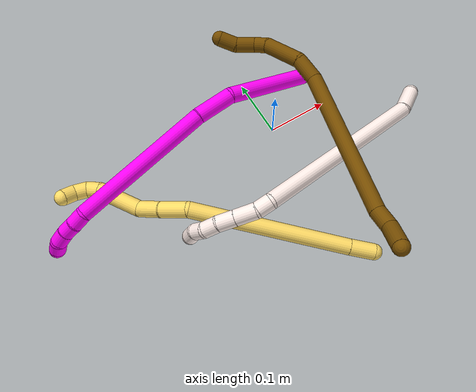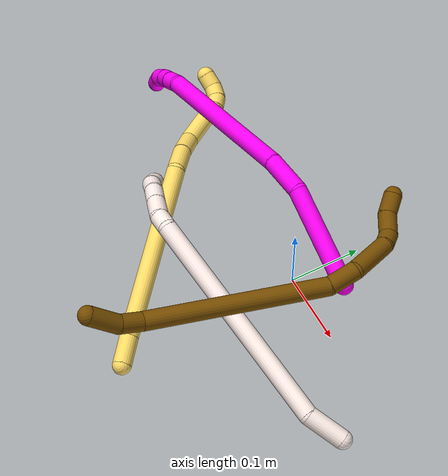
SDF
<sdf version="1.7">
 <world name="default">
  <model name="bin">
   <static>1</static>
   <link name="bottom">
    <collision name="collision-bottom">
     <pose>0 0 -0.01 0 -0 0</pose>
     <geometry><box><size>0.8 0.6 0.02</size></box></geometry>
     <surface>
      <friction><ode><mu>100</mu><mu2>100</mu2></ode></friction>
      <contact><collide_bitmask>65535</collide_bitmask></contact>
     </surface>
    </collision>
   </link>
   <link name="west_wall">
    <collision name="collision-west_wall">
     <pose>-0.41 0 0.1 0 -0 0</pose>
     <geometry><box><size>0.02 0.6 0.2</size></box></geometry>
     <surface>
      <friction><ode><mu>100</mu><mu2>100</mu2></ode></friction>
      <contact><collide_bitmask>65535</collide_bitmask></contact>
     </surface>
    </collision>
   </link>
   <link name="east_wall">
    <collision name="collision-east_wall">
     <pose>0.41 0 0.1 0 -0 0</pose>
     <geometry><box><size>0.02 0.6 0.2</size></box></geometry>
     <surface>
      <friction><ode><mu>100</mu><mu2>100</mu2></ode></friction>
      <contact><collide_bitmask>65535</collide_bitmask></contact>
     </surface>
    </collision>
   </link>
   <link name="south_wall">
    <collision name="collision-south_wall">
     <pose>0 -0.31 0.1 0 -0 0</pose>
     <geometry><box><size>0.8 0.02 0.2</size></box></geometry>
     <surface>
      <friction><ode><mu>100</mu><mu2>100</mu2></ode></friction>
      <contact><collide_bitmask>65535</collide_bitmask></contact>
     </surface>
    </collision>
   </link>
   <link name="north_wall">
    <collision name="collision-north_wall">
     <pose>0 0.31 0.1 0 -0 0</pose>
     <geometry><box><size>0.8 0.02 0.2</size></box></geometry>
     <surface>
      <friction><ode><mu>100</mu><mu2>100</mu2></ode></friction>
      <contact><collide_bitmask>65535</collide_bitmask></contact>
     </surface>
    </collision>
   </link>
  </model>
  <model name="5">
   <static>0</static>
   <link name="5">
    <collision name="collision-cylinder-e_1_1_4">
     <pose>-0.015449 0.008328 -0.008329 -2.35627 -0.919409 1.74831</pose>
     <geometry><cylinder><radius>0.0125</radius><length>0.038854</length></cylinder></geometry>
     <surface>
      <friction><ode><mu>1.16</mu><mu2>1.16</mu2><slip1>0</slip1><slip2>0</slip2></ode></friction>
      <contact><ode><kp>1e+06</kp><kd>1</kd><max_vel>0</max_vel><min_depth>0.001</min_depth></ode></contact>
     </surface>
    </collision>
    <visual name="visual-cylinder-e_1_1_4">
     <pose>-0.015449 0.008328 -0.008329 -2.35627 -0.919409 1.74831</pose>
     <geometry><cylinder><radius>0.0125</radius><length>0.038854</length></cylinder></geometry>
     <material><ambient>1 0.858824 0.4 1</ambient></material>
    </visual>
    <collision name="collision-cylinder-e_2_4_5">
     <pose>-0.126813 0.072639 -0.069764 -2.32982 -0.893313 1.67896</pose>
     <geometry><cylinder><radius>0.0125</radius><length>0.246203</length></cylinder></geometry>
     <surface>
      <friction><ode><mu>1.16</mu><mu2>1.16</mu2><slip1>0</slip1><slip2>0</slip2></ode></friction>
      <contact><ode><kp>1e+06</kp><kd>1</kd><max_vel>0</max_vel><min_depth>0.001</min_depth></ode></contact>
     </surface>
    </collision>
    <visual name="visual-cylinder-e_2_4_5">
     <pose>-0.126813 0.072639 -0.069764 -2.32982 -0.893313 1.67896</pose>
     <geometry><cylinder><radius>0.0125</radius><length>0.246203</length></cylinder></geometry>
     <material><ambient>1 0.858824 0.4 1</ambient></material>
    </visual>
    <collision name="collision-cylinder-e_3_5_6">
     <pose>-0.236336 0.132305 -0.139805 -2.92749 -0.665616 2.53877</pose>
     <geometry><cylinder><radius>0.0125</radius><length>0.04407</length></cylinder></geometry>
     <surface>
      <friction><ode><mu>1.16</mu><mu2>1.16</mu2><slip1>0</slip1><slip2>0</slip2></ode></friction>
      <contact><ode><kp>1e+06</kp><kd>1</kd><max_vel>0</max_vel><min_depth>0.001</min_depth></ode></contact>
     </surface>
    </collision>
    <visual name="visual-cylinder-e_3_5_6">
     <pose>-0.236336 0.132305 -0.139805 -2.92749 -0.665616 2.53877</pose>
     <geometry><cylinder><radius>0.0125</radius><length>0.04407</length></cylinder></geometry>
     <material><ambient>1 0.858824 0.4 1</ambient></material>
    </visual>
    <collision name="collision-cylinder-e_4_6_7">
     <pose>-0.259601 0.13898 -0.173304 -2.96284 -0.520945 2.49289</pose>
     <geometry><cylinder><radius>0.0125</radius><length>0.03881</length></cylinder></geometry>
     <surface>
      <friction><ode><mu>1.16</mu><mu2>1.16</mu2><slip1>0</slip1><slip2>0</slip2></ode></friction>
      <contact><ode><kp>1e+06</kp><kd>1</kd><max_vel>0</max_vel><min_depth>0.001</min_depth></ode></contact>
     </surface>
    </collision>
    <visual name="visual-cylinder-e_4_6_7">
     <pose>-0.259601 0.13898 -0.173304 -2.96284 -0.520945 2.49289</pose>
     <geometry><cylinder><radius>0.0125</radius><length>0.03881</length></cylinder></geometry>
     <material><ambient>1 0.858824 0.4 1</ambient></material>
    </visual>
    <collision name="collision-cylinder-e_5_7_8">
     <pose>-0.283188 0.156404 -0.205998 -2.41175 -0.571827 1.3117</pose>
     <geometry><cylinder><radius>0.0125</radius><length>0.051479</length></cylinder></geometry>
     <surface>
      <friction><ode><mu>1.16</mu><mu2>1.16</mu2><slip1>0</slip1><slip2>0</slip2></ode></friction>
      <contact><ode><kp>1e+06</kp><kd>1</kd><max_vel>0</max_vel><min_depth>0.001</min_depth></ode></contact>
     </surface>
    </collision>
    <visual name="visual-cylinder-e_5_7_8">
     <pose>-0.283188 0.156404 -0.205998 -2.41175 -0.571827 1.3117</pose>
     <geometry><cylinder><radius>0.0125</radius><length>0.051479</length></cylinder></geometry>
     <material><ambient>1 0.858824 0.4 1</ambient></material>
    </visual>
    <collision name="collision-cylinder-e_6_8_9">
     <pose>-0.301522 0.176212 -0.229549 -2.5145 -0.44802 1.22503</pose>
     <geometry><cylinder><radius>0.0125</radius><length>0.020333</length></cylinder></geometry>
     <surface>
      <friction><ode><mu>1.16</mu><mu2>1.16</mu2><slip1>0</slip1><slip2>0</slip2></ode></friction>
      <contact><ode><kp>1e+06</kp><kd>1</kd><max_vel>0</max_vel><min_depth>0.001</min_depth></ode></contact>
     </surface>
    </collision>
    <visual name="visual-cylinder-e_6_8_9">
     <pose>-0.301522 0.176212 -0.229549 -2.5145 -0.44802 1.22503</pose>
     <geometry><cylinder><radius>0.0125</radius><length>0.020333</length></cylinder></geometry>
     <material><ambient>1 0.858824 0.4 1</ambient></material>
    </visual>
    <collision name="collision-cylinder-e_7_9_10">
     <pose>-0.313307 0.184176 -0.243308 -2.75421 -0.822927 2.29671</pose>
     <geometry><cylinder><radius>0.0125</radius><length>0.020137</length></cylinder></geometry>
     <surface>
      <friction><ode><mu>1.16</mu><mu2>1.16</mu2><slip1>0</slip1><slip2>0</slip2></ode></friction>
      <contact><ode><kp>1e+06</kp><kd>1</kd><max_vel>0</max_vel><min_depth>0.001</min_depth></ode></contact>
     </surface>
    </collision>
    <visual name="visual-cylinder-e_7_9_10">
     <pose>-0.313307 0.184176 -0.243308 -2.75421 -0.822927 2.29671</pose>
     <geometry><cylinder><radius>0.0125</radius><length>0.020137</length></cylinder></geometry>
     <material><ambient>1 0.858824 0.4 1</ambient></material>
    </visual>
    <collision name="collision-cylinder-e_8_10_11">
     <pose>-0.330285 0.186787 -0.252641 -3.13349 -1.26851 3.13057</pose>
     <geometry><cylinder><radius>0.0125</radius><length>0.020104</length></cylinder></geometry>
     <surface>
      <friction><ode><mu>1.16</mu><mu2>1.16</mu2><slip1>0</slip1><slip2>0</slip2></ode></friction>
      <contact><ode><kp>1e+06</kp><kd>1</kd><max_vel>0</max_vel><min_depth>0.001</min_depth></ode></contact>
     </surface>
    </collision>
    <visual name="visual-cylinder-e_8_10_11">
     <pose>-0.330285 0.186787 -0.252641 -3.13349 -1.26851 3.13057</pose>
     <geometry><cylinder><radius>0.0125</radius><length>0.020104</length></cylinder></geometry>
     <material><ambient>1 0.858824 0.4 1</ambient></material>
    </visual>
    <collision name="collision-cylinder-e_9_11_2">
     <pose>-0.349749 0.185791 -0.254336 0.666273 -1.40511 -0.569996</pose>
     <geometry><cylinder><radius>0.0125</radius><length>0.02001</length></cylinder></geometry>
     <surface>
      <friction><ode><mu>1.16</mu><mu2>1.16</mu2><slip1>0</slip1><slip2>0</slip2></ode></friction>
      <contact><ode><kp>1e+06</kp><kd>1</kd><max_vel>0</max_vel><min_depth>0.001</min_depth></ode></contact>
     </surface>
    </collision>
    <visual name="visual-cylinder-e_9_11_2">
     <pose>-0.349749 0.185791 -0.254336 0.666273 -1.40511 -0.569996</pose>
     <geometry><cylinder><radius>0.0125</radius><length>0.02001</length></cylinder></geometry>
     <material><ambient>1 0.858824 0.4 1</ambient></material>
    </visual>
    <collision name="collision-sphere-2">
     <pose>-0.359617 0.184771 -0.253039 0 -0 0</pose>
     <geometry><sphere><radius>0.0125</radius></sphere></geometry>
     <surface>
      <friction><ode><mu>1.16</mu><mu2>1.16</mu2><slip1>0</slip1><slip2>0</slip2></ode></friction>
      <contact><ode><kp>1e+06</kp><kd>1</kd><max_vel>0</max_vel><min_depth>0.001</min_depth></ode></contact>
     </surface>
    </collision>
    <visual name="visual-sphere-2">
     <pose>-0.359617 0.184771 -0.253039 0 -0 0</pose>
     <geometry><sphere><radius>0.0125</radius></sphere></geometry>
     <material><ambient>1 0.858824 0.4 1</ambient></material>
    </visual>
    <collision name="collision-sphere-11">
     <pose>-0.339882 0.186811 -0.255633 0 -0 0</pose>
     <geometry><sphere><radius>0.0125</radius></sphere></geometry>
     <surface>
      <friction><ode><mu>1.16</mu><mu2>1.16</mu2><slip1>0</slip1><slip2>0</slip2></ode></friction>
      <contact><ode><kp>1e+06</kp><kd>1</kd><max_vel>0</max_vel><min_depth>0.001</min_depth></ode></contact>
     </surface>
    </collision>
    <visual name="visual-sphere-11">
     <pose>-0.339882 0.186811 -0.255633 0 -0 0</pose>
     <geometry><sphere><radius>0.0125</radius></sphere></geometry>
     <material><ambient>1 0.858824 0.4 1</ambient></material>
    </visual>
    <collision name="collision-sphere-10">
     <pose>-0.320689 0.186762 -0.249648 0 -0 0</pose>
     <geometry><sphere><radius>0.0125</radius></sphere></geometry>
     <surface>
      <friction><ode><mu>1.16</mu><mu2>1.16</mu2><slip1>0</slip1><slip2>0</slip2></ode></friction>
      <contact><ode><kp>1e+06</kp><kd>1</kd><max_vel>0</max_vel><min_depth>0.001</min_depth></ode></contact>
     </surface>
    </collision>
    <visual name="visual-sphere-10">
     <pose>-0.320689 0.186762 -0.249648 0 -0 0</pose>
     <geometry><sphere><radius>0.0125</radius></sphere></geometry>
     <material><ambient>1 0.858824 0.4 1</ambient></material>
    </visual>
    <collision name="collision-sphere-9">
     <pose>-0.305926 0.181589 -0.236968 0 -0 0</pose>
     <geometry><sphere><radius>0.0125</radius></sphere></geometry>
     <surface>
      <friction><ode><mu>1.16</mu><mu2>1.16</mu2><slip1>0</slip1><slip2>0</slip2></ode></friction>
      <contact><ode><kp>1e+06</kp><kd>1</kd><max_vel>0</max_vel><min_depth>0.001</min_depth></ode></contact>
     </surface>
    </collision>
    <visual name="visual-sphere-9">
     <pose>-0.305926 0.181589 -0.236968 0 -0 0</pose>
     <geometry><sphere><radius>0.0125</radius></sphere></geometry>
     <material><ambient>1 0.858824 0.4 1</ambient></material>
    </visual>
    <collision name="collision-sphere-4">
     <pose>-0.030899 0.016656 -0.016659 0 -0 0</pose>
     <geometry><sphere><radius>0.0125</radius></sphere></geometry>
     <surface>
      <friction><ode><mu>1.16</mu><mu2>1.16</mu2><slip1>0</slip1><slip2>0</slip2></ode></friction>
      <contact><ode><kp>1e+06</kp><kd>1</kd><max_vel>0</max_vel><min_depth>0.001</min_depth></ode></contact>
     </surface>
    </collision>
    <visual name="visual-sphere-4">
     <pose>-0.030899 0.016656 -0.016659 0 -0 0</pose>
     <geometry><sphere><radius>0.0125</radius></sphere></geometry>
     <material><ambient>1 0.858824 0.4 1</ambient></material>
    </visual>
    <collision name="collision-sphere-1">
     <geometry><sphere><radius>0.0125</radius></sphere></geometry>
     <surface>
      <friction><ode><mu>1.16</mu><mu2>1.16</mu2><slip1>0</slip1><slip2>0</slip2></ode></friction>
      <contact><ode><kp>1e+06</kp><kd>1</kd><max_vel>0</max_vel><min_depth>0.001</min_depth></ode></contact>
     </surface>
    </collision>
    <visual name="visual-sphere-1">
     <geometry><sphere><radius>0.0125</radius></sphere></geometry>
     <material><ambient>1 0.858824 0.4 1</ambient></material>
    </visual>
    <collision name="collision-sphere-8">
     <pose>-0.297118 0.170835 -0.222129 0 -0 0</pose>
     <geometry><sphere><radius>0.0125</radius></sphere></geometry>
     <surface>
      <friction><ode><mu>1.16</mu><mu2>1.16</mu2><slip1>0</slip1><slip2>0</slip2></ode></friction>
      <contact><ode><kp>1e+06</kp><kd>1</kd><max_vel>0</max_vel><min_depth>0.001</min_depth></ode></contact>
     </surface>
    </collision>
    <visual name="visual-sphere-8">
     <pose>-0.297118 0.170835 -0.222129 0 -0 0</pose>
     <geometry><sphere><radius>0.0125</radius></sphere></geometry>
     <material><ambient>1 0.858824 0.4 1</ambient></material>
    </visual>
    <collision name="collision-sphere-5">
     <pose>-0.222728 0.128622 -0.12287 0 -0 0</pose>
     <geometry><sphere><radius>0.0125</radius></sphere></geometry>
     <surface>
      <friction><ode><mu>1.16</mu><mu2>1.16</mu2><slip1>0</slip1><slip2>0</slip2></ode></friction>
      <contact><ode><kp>1e+06</kp><kd>1</kd><max_vel>0</max_vel><min_depth>0.001</min_depth></ode></contact>
     </surface>
    </collision>
    <visual name="visual-sphere-5">
     <pose>-0.222728 0.128622 -0.12287 0 -0 0</pose>
     <geometry><sphere><radius>0.0125</radius></sphere></geometry>
     <material><ambient>1 0.858824 0.4 1</ambient></material>
    </visual>
    <collision name="collision-sphere-6">
     <pose>-0.249943 0.135987 -0.156741 0 -0 0</pose>
     <geometry><sphere><radius>0.0125</radius></sphere></geometry>
     <surface>
      <friction><ode><mu>1.16</mu><mu2>1.16</mu2><slip1>0</slip1><slip2>0</slip2></ode></friction>
      <contact><ode><kp>1e+06</kp><kd>1</kd><max_vel>0</max_vel><min_depth>0.001</min_depth></ode></contact>
     </surface>
    </collision>
    <visual name="visual-sphere-6">
     <pose>-0.249943 0.135987 -0.156741 0 -0 0</pose>
     <geometry><sphere><radius>0.0125</radius></sphere></geometry>
     <material><ambient>1 0.858824 0.4 1</ambient></material>
    </visual>
    <collision name="collision-sphere-7">
     <pose>-0.269259 0.141972 -0.189866 0 -0 0</pose>
     <geometry><sphere><radius>0.0125</radius></sphere></geometry>
     <surface>
      <friction><ode><mu>1.16</mu><mu2>1.16</mu2><slip1>0</slip1><slip2>0</slip2></ode></friction>
      <contact><ode><kp>1e+06</kp><kd>1</kd><max_vel>0</max_vel><min_depth>0.001</min_depth></ode></contact>
     </surface>
    </collision>
    <visual name="visual-sphere-7">
     <pose>-0.269259 0.141972 -0.189866 0 -0 0</pose>
     <geometry><sphere><radius>0.0125</radius></sphere></geometry>
     <material><ambient>1 0.858824 0.4 1</ambient></material>
    </visual>
    <inertial>
     <pose>-0.185938 0.104496 -0.121453 0 -0 0</pose>
     <mass>0.5</mass>
     <inertia>
      <ixx>0.000684</ixx>
      <ixy>0</ixy>
      <ixz>0</ixz>
      <iyy>0.00164</iyy>
      <iyz>0</iyz>
      <izz>0.000399</izz>
     </inertia>
    </inertial>
   </link>
   <pose>0.015913 -0.258635 0.012274 0.557776 0.387153 -0.050406</pose>
  </model>
  <model name="10">
   <static>0</static>
   <link name="10">
    <collision name="collision-cylinder-e_1_1_4">
     <pose>-0.055926 0.009458 0.039847 -0.233056 -0.93872 0.118596</pose>
     <geometry><cylinder><radius>0.0125</radius><length>0.138635</length></cylinder></geometry>
     <surface>
      <friction><ode><mu>1.16</mu><mu2>1.16</mu2><slip1>0</slip1><slip2>0</slip2></ode></friction>
      <contact><ode><kp>1e+06</kp><kd>1</kd><max_vel>0</max_vel><min_depth>0.001</min_depth></ode></contact>
     </surface>
    </collision>
    <visual name="visual-cylinder-e_1_1_4">
     <pose>-0.055926 0.009458 0.039847 -0.233056 -0.93872 0.118596</pose>
     <geometry><cylinder><radius>0.0125</radius><length>0.138635</length></cylinder></geometry>
     <material><ambient>1 0 0.964706 1</ambient></material>
    </visual>
    <collision name="collision-cylinder-e_2_4_5">
     <pose>-0.136687 0.012543 0.09274 0.454475 -1.04175 -0.263785</pose>
     <geometry><cylinder><radius>0.0125</radius><length>0.057538</length></cylinder></geometry>
     <surface>
      <friction><ode><mu>1.16</mu><mu2>1.16</mu2><slip1>0</slip1><slip2>0</slip2></ode></friction>
      <contact><ode><kp>1e+06</kp><kd>1</kd><max_vel>0</max_vel><min_depth>0.001</min_depth></ode></contact>
     </surface>
    </collision>
    <visual name="visual-cylinder-e_2_4_5">
     <pose>-0.136687 0.012543 0.09274 0.454475 -1.04175 -0.263785</pose>
     <geometry><cylinder><radius>0.0125</radius><length>0.057538</length></cylinder></geometry>
     <material><ambient>1 0 0.964706 1</ambient></material>
    </visual>
    <collision name="collision-cylinder-e_3_5_6">
     <pose>-0.252588 -0.034196 0.150524 0.734057 -0.986256 -0.407482</pose>
     <geometry><cylinder><radius>0.0125</radius><length>0.21839</length></cylinder></geometry>
     <surface>
      <friction><ode><mu>1.16</mu><mu2>1.16</mu2><slip1>0</slip1><slip2>0</slip2></ode></friction>
      <contact><ode><kp>1e+06</kp><kd>1</kd><max_vel>0</max_vel><min_depth>0.001</min_depth></ode></contact>
     </surface>
    </collision>
    <visual name="visual-cylinder-e_3_5_6">
     <pose>-0.252588 -0.034196 0.150524 0.734057 -0.986256 -0.407482</pose>
     <geometry><cylinder><radius>0.0125</radius><length>0.21839</length></cylinder></geometry>
     <material><ambient>1 0 0.964706 1</ambient></material>
    </visual>
    <collision name="collision-cylinder-e_4_6_7">
     <pose>-0.352966 -0.08102 0.196846 1.33035 -0.950595 -0.767392</pose>
     <geometry><cylinder><radius>0.0125</radius><length>0.022888</length></cylinder></geometry>
     <surface>
      <friction><ode><mu>1.16</mu><mu2>1.16</mu2><slip1>0</slip1><slip2>0</slip2></ode></friction>
      <contact><ode><kp>1e+06</kp><kd>1</kd><max_vel>0</max_vel><min_depth>0.001</min_depth></ode></contact>
     </surface>
    </collision>
    <visual name="visual-cylinder-e_4_6_7">
     <pose>-0.352966 -0.08102 0.196846 1.33035 -0.950595 -0.767392</pose>
     <geometry><cylinder><radius>0.0125</radius><length>0.022888</length></cylinder></geometry>
     <material><ambient>1 0 0.964706 1</ambient></material>
    </visual>
    <collision name="collision-cylinder-e_5_7_8">
     <pose>-0.370691 -0.093011 0.198457 1.56581 -0.989168 -0.985008</pose>
     <geometry><cylinder><radius>0.0125</radius><length>0.020135</length></cylinder></geometry>
     <surface>
      <friction><ode><mu>1.16</mu><mu2>1.16</mu2><slip1>0</slip1><slip2>0</slip2></ode></friction>
      <contact><ode><kp>1e+06</kp><kd>1</kd><max_vel>0</max_vel><min_depth>0.001</min_depth></ode></contact>
     </surface>
    </collision>
    <visual name="visual-cylinder-e_5_7_8">
     <pose>-0.370691 -0.093011 0.198457 1.56581 -0.989168 -0.985008</pose>
     <geometry><cylinder><radius>0.0125</radius><length>0.020135</length></cylinder></geometry>
     <material><ambient>1 0 0.964706 1</ambient></material>
    </visual>
    <collision name="collision-cylinder-e_6_8_9">
     <pose>-0.387109 -0.105624 0.198211 1.6095 -0.846239 -0.875603</pose>
     <geometry><cylinder><radius>0.0125</radius><length>0.021384</length></cylinder></geometry>
     <surface>
      <friction><ode><mu>1.16</mu><mu2>1.16</mu2><slip1>0</slip1><slip2>0</slip2></ode></friction>
      <contact><ode><kp>1e+06</kp><kd>1</kd><max_vel>0</max_vel><min_depth>0.001</min_depth></ode></contact>
     </surface>
    </collision>
    <visual name="visual-cylinder-e_6_8_9">
     <pose>-0.387109 -0.105624 0.198211 1.6095 -0.846239 -0.875603</pose>
     <geometry><cylinder><radius>0.0125</radius><length>0.021384</length></cylinder></geometry>
     <material><ambient>1 0 0.964706 1</ambient></material>
    </visual>
    <collision name="collision-cylinder-e_7_9_2">
     <pose>-0.400348 -0.121069 0.1943 1.98088 -0.520887 -0.7721</pose>
     <geometry><cylinder><radius>0.0125</radius><length>0.021029</length></cylinder></geometry>
     <surface>
      <friction><ode><mu>1.16</mu><mu2>1.16</mu2><slip1>0</slip1><slip2>0</slip2></ode></friction>
      <contact><ode><kp>1e+06</kp><kd>1</kd><max_vel>0</max_vel><min_depth>0.001</min_depth></ode></contact>
     </surface>
    </collision>
    <visual name="visual-cylinder-e_7_9_2">
     <pose>-0.400348 -0.121069 0.1943 1.98088 -0.520887 -0.7721</pose>
     <geometry><cylinder><radius>0.0125</radius><length>0.021029</length></cylinder></geometry>
     <material><ambient>1 0 0.964706 1</ambient></material>
    </visual>
    <collision name="collision-sphere-2">
     <pose>-0.40558 -0.129433 0.190664 0 -0 0</pose>
     <geometry><sphere><radius>0.0125</radius></sphere></geometry>
     <surface>
      <friction><ode><mu>1.16</mu><mu2>1.16</mu2><slip1>0</slip1><slip2>0</slip2></ode></friction>
      <contact><ode><kp>1e+06</kp><kd>1</kd><max_vel>0</max_vel><min_depth>0.001</min_depth></ode></contact>
     </surface>
    </collision>
    <visual name="visual-sphere-2">
     <pose>-0.40558 -0.129433 0.190664 0 -0 0</pose>
     <geometry><sphere><radius>0.0125</radius></sphere></geometry>
     <material><ambient>1 0 0.964706 1</ambient></material>
    </visual>
    <collision name="collision-sphere-9">
     <pose>-0.395115 -0.112705 0.197936 0 -0 0</pose>
     <geometry><sphere><radius>0.0125</radius></sphere></geometry>
     <surface>
      <friction><ode><mu>1.16</mu><mu2>1.16</mu2><slip1>0</slip1><slip2>0</slip2></ode></friction>
      <contact><ode><kp>1e+06</kp><kd>1</kd><max_vel>0</max_vel><min_depth>0.001</min_depth></ode></contact>
     </surface>
    </collision>
    <visual name="visual-sphere-9">
     <pose>-0.395115 -0.112705 0.197936 0 -0 0</pose>
     <geometry><sphere><radius>0.0125</radius></sphere></geometry>
     <material><ambient>1 0 0.964706 1</ambient></material>
    </visual>
    <collision name="collision-sphere-4">
     <pose>-0.111851 0.018917 0.079694 0 -0 0</pose>
     <geometry><sphere><radius>0.0125</radius></sphere></geometry>
     <surface>
      <friction><ode><mu>1.16</mu><mu2>1.16</mu2><slip1>0</slip1><slip2>0</slip2></ode></friction>
      <contact><ode><kp>1e+06</kp><kd>1</kd><max_vel>0</max_vel><min_depth>0.001</min_depth></ode></contact>
     </surface>
    </collision>
    <visual name="visual-sphere-4">
     <pose>-0.111851 0.018917 0.079694 0 -0 0</pose>
     <geometry><sphere><radius>0.0125</radius></sphere></geometry>
     <material><ambient>1 0 0.964706 1</ambient></material>
    </visual>
    <collision name="collision-sphere-1">
     <geometry><sphere><radius>0.0125</radius></sphere></geometry>
     <surface>
      <friction><ode><mu>1.16</mu><mu2>1.16</mu2><slip1>0</slip1><slip2>0</slip2></ode></friction>
      <contact><ode><kp>1e+06</kp><kd>1</kd><max_vel>0</max_vel><min_depth>0.001</min_depth></ode></contact>
     </surface>
    </collision>
    <visual name="visual-sphere-1">
     <geometry><sphere><radius>0.0125</radius></sphere></geometry>
     <material><ambient>1 0 0.964706 1</ambient></material>
    </visual>
    <collision name="collision-sphere-8">
     <pose>-0.379103 -0.098542 0.198485 0 -0 0</pose>
     <geometry><sphere><radius>0.0125</radius></sphere></geometry>
     <surface>
      <friction><ode><mu>1.16</mu><mu2>1.16</mu2><slip1>0</slip1><slip2>0</slip2></ode></friction>
      <contact><ode><kp>1e+06</kp><kd>1</kd><max_vel>0</max_vel><min_depth>0.001</min_depth></ode></contact>
     </surface>
    </collision>
    <visual name="visual-sphere-8">
     <pose>-0.379103 -0.098542 0.198485 0 -0 0</pose>
     <geometry><sphere><radius>0.0125</radius></sphere></geometry>
     <material><ambient>1 0 0.964706 1</ambient></material>
    </visual>
    <collision name="collision-sphere-5">
     <pose>-0.161523 0.006168 0.105787 0 -0 0</pose>
     <geometry><sphere><radius>0.0125</radius></sphere></geometry>
     <surface>
      <friction><ode><mu>1.16</mu><mu2>1.16</mu2><slip1>0</slip1><slip2>0</slip2></ode></friction>
      <contact><ode><kp>1e+06</kp><kd>1</kd><max_vel>0</max_vel><min_depth>0.001</min_depth></ode></contact>
     </surface>
    </collision>
    <visual name="visual-sphere-5">
     <pose>-0.161523 0.006168 0.105787 0 -0 0</pose>
     <geometry><sphere><radius>0.0125</radius></sphere></geometry>
     <material><ambient>1 0 0.964706 1</ambient></material>
    </visual>
    <collision name="collision-sphere-6">
     <pose>-0.343653 -0.074561 0.195262 0 -0 0</pose>
     <geometry><sphere><radius>0.0125</radius></sphere></geometry>
     <surface>
      <friction><ode><mu>1.16</mu><mu2>1.16</mu2><slip1>0</slip1><slip2>0</slip2></ode></friction>
      <contact><ode><kp>1e+06</kp><kd>1</kd><max_vel>0</max_vel><min_depth>0.001</min_depth></ode></contact>
     </surface>
    </collision>
    <visual name="visual-sphere-6">
     <pose>-0.343653 -0.074561 0.195262 0 -0 0</pose>
     <geometry><sphere><radius>0.0125</radius></sphere></geometry>
     <material><ambient>1 0 0.964706 1</ambient></material>
    </visual>
    <collision name="collision-sphere-7">
     <pose>-0.362279 -0.08748 0.19843 0 -0 0</pose>
     <geometry><sphere><radius>0.0125</radius></sphere></geometry>
     <surface>
      <friction><ode><mu>1.16</mu><mu2>1.16</mu2><slip1>0</slip1><slip2>0</slip2></ode></friction>
      <contact><ode><kp>1e+06</kp><kd>1</kd><max_vel>0</max_vel><min_depth>0.001</min_depth></ode></contact>
     </surface>
    </collision>
    <visual name="visual-sphere-7">
     <pose>-0.362279 -0.08748 0.19843 0 -0 0</pose>
     <geometry><sphere><radius>0.0125</radius></sphere></geometry>
     <material><ambient>1 0 0.964706 1</ambient></material>
    </visual>
    <inertial>
     <pose>-0.206041 -0.027934 0.121118 0 -0 0</pose>
     <mass>0.5</mass>
     <inertia>
      <ixx>0.000376</ixx>
      <ixy>0</ixy>
      <ixz>0</ixz>
      <iyy>0.000846</iyy>
      <iyz>0</iyz>
      <izz>0.001251</izz>
     </inertia>
    </inertial>
   </link>
   <pose>0.073372 0.030893 0.065431 0.888933 -0.175216 -0.430684</pose>
  </model>
  <model name="11">
   <static>0</static>
   <link name="11">
    <collision name="collision-cylinder-e_1_1_4">
     <pose>-0.01992 0.01618 -0.002823 -1.74351 -0.881285 1.02243</pose>
     <geometry><cylinder><radius>0.0125</radius><length>0.051635</length></cylinder></geometry>
     <surface>
      <friction><ode><mu>1.16</mu><mu2>1.16</mu2><slip1>0</slip1><slip2>0</slip2></ode></friction>
      <contact><ode><kp>1e+06</kp><kd>1</kd><max_vel>0</max_vel><min_depth>0.001</min_depth></ode></contact>
     </surface>
    </collision>
    <visual name="visual-cylinder-e_1_1_4">
     <pose>-0.01992 0.01618 -0.002823 -1.74351 -0.881285 1.02243</pose>
     <geometry><cylinder><radius>0.0125</radius><length>0.051635</length></cylinder></geometry>
     <material><ambient>1 0.933333 0.909804 1</ambient></material>
    </visual>
    <collision name="collision-cylinder-e_2_4_5">
     <pose>-0.18126 0.074183 -0.034433 -2.17362 -1.2261 1.85808</pose>
     <geometry><cylinder><radius>0.0125</radius><length>0.300517</length></cylinder></geometry>
     <surface>
      <friction><ode><mu>1.16</mu><mu2>1.16</mu2><slip1>0</slip1><slip2>0</slip2></ode></friction>
      <contact><ode><kp>1e+06</kp><kd>1</kd><max_vel>0</max_vel><min_depth>0.001</min_depth></ode></contact>
     </surface>
    </collision>
    <visual name="visual-cylinder-e_2_4_5">
     <pose>-0.18126 0.074183 -0.034433 -2.17362 -1.2261 1.85808</pose>
     <geometry><cylinder><radius>0.0125</radius><length>0.300517</length></cylinder></geometry>
     <material><ambient>1 0.933333 0.909804 1</ambient></material>
    </visual>
    <collision name="collision-cylinder-e_3_5_6">
     <pose>-0.334116 0.115448 -0.062097 0.461949 -1.46153 -0.415483</pose>
     <geometry><cylinder><radius>0.0125</radius><length>0.023009</length></cylinder></geometry>
     <surface>
      <friction><ode><mu>1.16</mu><mu2>1.16</mu2><slip1>0</slip1><slip2>0</slip2></ode></friction>
      <contact><ode><kp>1e+06</kp><kd>1</kd><max_vel>0</max_vel><min_depth>0.001</min_depth></ode></contact>
     </surface>
    </collision>
    <visual name="visual-cylinder-e_3_5_6">
     <pose>-0.334116 0.115448 -0.062097 0.461949 -1.46153 -0.415483</pose>
     <geometry><cylinder><radius>0.0125</radius><length>0.023009</length></cylinder></geometry>
     <material><ambient>1 0.933333 0.909804 1</ambient></material>
    </visual>
    <collision name="collision-cylinder-e_4_6_7">
     <pose>-0.360781 0.10884 -0.059708 1.36458 -1.18531 -1.00124</pose>
     <geometry><cylinder><radius>0.0125</radius><length>0.03287</length></cylinder></geometry>
     <surface>
      <friction><ode><mu>1.16</mu><mu2>1.16</mu2><slip1>0</slip1><slip2>0</slip2></ode></friction>
      <contact><ode><kp>1e+06</kp><kd>1</kd><max_vel>0</max_vel><min_depth>0.001</min_depth></ode></contact>
     </surface>
    </collision>
    <visual name="visual-cylinder-e_4_6_7">
     <pose>-0.360781 0.10884 -0.059708 1.36458 -1.18531 -1.00124</pose>
     <geometry><cylinder><radius>0.0125</radius><length>0.03287</length></cylinder></geometry>
     <material><ambient>1 0.933333 0.909804 1</ambient></material>
    </visual>
    <collision name="collision-cylinder-e_5_7_8">
     <pose>-0.388659 0.097525 -0.057438 1.38229 -1.16988 -1.00239</pose>
     <geometry><cylinder><radius>0.0125</radius><length>0.027476</length></cylinder></geometry>
     <surface>
      <friction><ode><mu>1.16</mu><mu2>1.16</mu2><slip1>0</slip1><slip2>0</slip2></ode></friction>
      <contact><ode><kp>1e+06</kp><kd>1</kd><max_vel>0</max_vel><min_depth>0.001</min_depth></ode></contact>
     </surface>
    </collision>
    <visual name="visual-cylinder-e_5_7_8">
     <pose>-0.388659 0.097525 -0.057438 1.38229 -1.16988 -1.00239</pose>
     <geometry><cylinder><radius>0.0125</radius><length>0.027476</length></cylinder></geometry>
     <material><ambient>1 0.933333 0.909804 1</ambient></material>
    </visual>
    <collision name="collision-cylinder-e_6_8_9">
     <pose>-0.411611 0.0872 -0.053366 1.02571 -1.04962 -0.63031</pose>
     <geometry><cylinder><radius>0.0125</radius><length>0.023764</length></cylinder></geometry>
     <surface>
      <friction><ode><mu>1.16</mu><mu2>1.16</mu2><slip1>0</slip1><slip2>0</slip2></ode></friction>
      <contact><ode><kp>1e+06</kp><kd>1</kd><max_vel>0</max_vel><min_depth>0.001</min_depth></ode></contact>
     </surface>
    </collision>
    <visual name="visual-cylinder-e_6_8_9">
     <pose>-0.411611 0.0872 -0.053366 1.02571 -1.04962 -0.63031</pose>
     <geometry><cylinder><radius>0.0125</radius><length>0.023764</length></cylinder></geometry>
     <material><ambient>1 0.933333 0.909804 1</ambient></material>
    </visual>
    <collision name="collision-cylinder-e_7_9_10">
     <pose>-0.428088 0.075005 -0.046853 1.12096 -0.661732 -0.424667</pose>
     <geometry><cylinder><radius>0.0125</radius><length>0.020088</length></cylinder></geometry>
     <surface>
      <friction><ode><mu>1.16</mu><mu2>1.16</mu2><slip1>0</slip1><slip2>0</slip2></ode></friction>
      <contact><ode><kp>1e+06</kp><kd>1</kd><max_vel>0</max_vel><min_depth>0.001</min_depth></ode></contact>
     </surface>
    </collision>
    <visual name="visual-cylinder-e_7_9_10">
     <pose>-0.428088 0.075005 -0.046853 1.12096 -0.661732 -0.424667</pose>
     <geometry><cylinder><radius>0.0125</radius><length>0.020088</length></cylinder></geometry>
     <material><ambient>1 0.933333 0.909804 1</ambient></material>
    </visual>
    <collision name="collision-cylinder-e_8_10_2">
     <pose>-0.438997 0.061952 -0.036405 0.701607 -0.476932 -0.177446</pose>
     <geometry><cylinder><radius>0.0125</radius><length>0.020641</length></cylinder></geometry>
     <surface>
      <friction><ode><mu>1.16</mu><mu2>1.16</mu2><slip1>0</slip1><slip2>0</slip2></ode></friction>
      <contact><ode><kp>1e+06</kp><kd>1</kd><max_vel>0</max_vel><min_depth>0.001</min_depth></ode></contact>
     </surface>
    </collision>
    <visual name="visual-cylinder-e_8_10_2">
     <pose>-0.438997 0.061952 -0.036405 0.701607 -0.476932 -0.177446</pose>
     <geometry><cylinder><radius>0.0125</radius><length>0.020641</length></cylinder></geometry>
     <material><ambient>1 0.933333 0.909804 1</ambient></material>
    </visual>
    <collision name="collision-sphere-2">
     <pose>-0.443735 0.056034 -0.029402 0 -0 0</pose>
     <geometry><sphere><radius>0.0125</radius></sphere></geometry>
     <surface>
      <friction><ode><mu>1.16</mu><mu2>1.16</mu2><slip1>0</slip1><slip2>0</slip2></ode></friction>
      <contact><ode><kp>1e+06</kp><kd>1</kd><max_vel>0</max_vel><min_depth>0.001</min_depth></ode></contact>
     </surface>
    </collision>
    <visual name="visual-sphere-2">
     <pose>-0.443735 0.056034 -0.029402 0 -0 0</pose>
     <geometry><sphere><radius>0.0125</radius></sphere></geometry>
     <material><ambient>1 0.933333 0.909804 1</ambient></material>
    </visual>
    <collision name="collision-sphere-10">
     <pose>-0.434259 0.06787 -0.043408 0 -0 0</pose>
     <geometry><sphere><radius>0.0125</radius></sphere></geometry>
     <surface>
      <friction><ode><mu>1.16</mu><mu2>1.16</mu2><slip1>0</slip1><slip2>0</slip2></ode></friction>
      <contact><ode><kp>1e+06</kp><kd>1</kd><max_vel>0</max_vel><min_depth>0.001</min_depth></ode></contact>
     </surface>
    </collision>
    <visual name="visual-sphere-10">
     <pose>-0.434259 0.06787 -0.043408 0 -0 0</pose>
     <geometry><sphere><radius>0.0125</radius></sphere></geometry>
     <material><ambient>1 0.933333 0.909804 1</ambient></material>
    </visual>
    <collision name="collision-sphere-9">
     <pose>-0.421916 0.082141 -0.050299 0 -0 0</pose>
     <geometry><sphere><radius>0.0125</radius></sphere></geometry>
     <surface>
      <friction><ode><mu>1.16</mu><mu2>1.16</mu2><slip1>0</slip1><slip2>0</slip2></ode></friction>
      <contact><ode><kp>1e+06</kp><kd>1</kd><max_vel>0</max_vel><min_depth>0.001</min_depth></ode></contact>
     </surface>
    </collision>
    <visual name="visual-sphere-9">
     <pose>-0.421916 0.082141 -0.050299 0 -0 0</pose>
     <geometry><sphere><radius>0.0125</radius></sphere></geometry>
     <material><ambient>1 0.933333 0.909804 1</ambient></material>
    </visual>
    <collision name="collision-sphere-4">
     <pose>-0.03984 0.03236 -0.005645 0 -0 0</pose>
     <geometry><sphere><radius>0.0125</radius></sphere></geometry>
     <surface>
      <friction><ode><mu>1.16</mu><mu2>1.16</mu2><slip1>0</slip1><slip2>0</slip2></ode></friction>
      <contact><ode><kp>1e+06</kp><kd>1</kd><max_vel>0</max_vel><min_depth>0.001</min_depth></ode></contact>
     </surface>
    </collision>
    <visual name="visual-sphere-4">
     <pose>-0.03984 0.03236 -0.005645 0 -0 0</pose>
     <geometry><sphere><radius>0.0125</radius></sphere></geometry>
     <material><ambient>1 0.933333 0.909804 1</ambient></material>
    </visual>
    <collision name="collision-sphere-1">
     <geometry><sphere><radius>0.0125</radius></sphere></geometry>
     <surface>
      <friction><ode><mu>1.16</mu><mu2>1.16</mu2><slip1>0</slip1><slip2>0</slip2></ode></friction>
      <contact><ode><kp>1e+06</kp><kd>1</kd><max_vel>0</max_vel><min_depth>0.001</min_depth></ode></contact>
     </surface>
    </collision>
    <visual name="visual-sphere-1">
     <geometry><sphere><radius>0.0125</radius></sphere></geometry>
     <material><ambient>1 0.933333 0.909804 1</ambient></material>
    </visual>
    <collision name="collision-sphere-8">
     <pose>-0.401307 0.092258 -0.056434 0 -0 0</pose>
     <geometry><sphere><radius>0.0125</radius></sphere></geometry>
     <surface>
      <friction><ode><mu>1.16</mu><mu2>1.16</mu2><slip1>0</slip1><slip2>0</slip2></ode></friction>
      <contact><ode><kp>1e+06</kp><kd>1</kd><max_vel>0</max_vel><min_depth>0.001</min_depth></ode></contact>
     </surface>
    </collision>
    <visual name="visual-sphere-8">
     <pose>-0.401307 0.092258 -0.056434 0 -0 0</pose>
     <geometry><sphere><radius>0.0125</radius></sphere></geometry>
     <material><ambient>1 0.933333 0.909804 1</ambient></material>
    </visual>
    <collision name="collision-sphere-5">
     <pose>-0.32268 0.116007 -0.06322 0 -0 0</pose>
     <geometry><sphere><radius>0.0125</radius></sphere></geometry>
     <surface>
      <friction><ode><mu>1.16</mu><mu2>1.16</mu2><slip1>0</slip1><slip2>0</slip2></ode></friction>
      <contact><ode><kp>1e+06</kp><kd>1</kd><max_vel>0</max_vel><min_depth>0.001</min_depth></ode></contact>
     </surface>
    </collision>
    <visual name="visual-sphere-5">
     <pose>-0.32268 0.116007 -0.06322 0 -0 0</pose>
     <geometry><sphere><radius>0.0125</radius></sphere></geometry>
     <material><ambient>1 0.933333 0.909804 1</ambient></material>
    </visual>
    <collision name="collision-sphere-6">
     <pose>-0.345552 0.114889 -0.060974 0 -0 0</pose>
     <geometry><sphere><radius>0.0125</radius></sphere></geometry>
     <surface>
      <friction><ode><mu>1.16</mu><mu2>1.16</mu2><slip1>0</slip1><slip2>0</slip2></ode></friction>
      <contact><ode><kp>1e+06</kp><kd>1</kd><max_vel>0</max_vel><min_depth>0.001</min_depth></ode></contact>
     </surface>
    </collision>
    <visual name="visual-sphere-6">
     <pose>-0.345552 0.114889 -0.060974 0 -0 0</pose>
     <geometry><sphere><radius>0.0125</radius></sphere></geometry>
     <material><ambient>1 0.933333 0.909804 1</ambient></material>
    </visual>
    <collision name="collision-sphere-7">
     <pose>-0.37601 0.102791 -0.058443 0 -0 0</pose>
     <geometry><sphere><radius>0.0125</radius></sphere></geometry>
     <surface>
      <friction><ode><mu>1.16</mu><mu2>1.16</mu2><slip1>0</slip1><slip2>0</slip2></ode></friction>
      <contact><ode><kp>1e+06</kp><kd>1</kd><max_vel>0</max_vel><min_depth>0.001</min_depth></ode></contact>
     </surface>
    </collision>
    <visual name="visual-sphere-7">
     <pose>-0.37601 0.102791 -0.058443 0 -0 0</pose>
     <geometry><sphere><radius>0.0125</radius></sphere></geometry>
     <material><ambient>1 0.933333 0.909804 1</ambient></material>
    </visual>
    <inertial>
     <pose>-0.226335 0.0738 -0.036847 0 -0 0</pose>
     <mass>0.5</mass>
     <inertia>
      <ixx>0.000497</ixx>
      <ixy>0</ixy>
      <ixz>0</ixz>
      <iyy>0.00282</iyy>
      <iyz>0</iyz>
      <izz>0.001524</izz>
     </inertia>
    </inertial>
   </link>
   <pose>0.237077 -0.064728 0.011499 2.63673 -0.07868 0.00067</pose>
  </model>
  <model name="12">
   <static>0</static>
   <link name="12">
    <collision name="collision-cylinder-e_1_1_4">
     <pose>0.000327 0.014938 -0.015574 -2.37704 0.015139 -0.037651</pose>
     <geometry><cylinder><radius>0.0125</radius><length>0.043165</length></cylinder></geometry>
     <surface>
      <friction><ode><mu>1.16</mu><mu2>1.16</mu2><slip1>0</slip1><slip2>0</slip2></ode></friction>
      <contact><ode><kp>1e+06</kp><kd>1</kd><max_vel>0</max_vel><min_depth>0.001</min_depth></ode></contact>
     </surface>
    </collision>
    <visual name="visual-cylinder-e_1_1_4">
     <pose>0.000327 0.014938 -0.015574 -2.37704 0.015139 -0.037651</pose>
     <geometry><cylinder><radius>0.0125</radius><length>0.043165</length></cylinder></geometry>
     <material><ambient>0.466667 0.301961 0 1</ambient></material>
    </visual>
    <collision name="collision-cylinder-e_2_4_5">
     <pose>-0.001115 0.0437 -0.038159 -2.04013 -0.113594 0.184647</pose>
     <geometry><cylinder><radius>0.0125</radius><length>0.031201</length></cylinder></geometry>
     <surface>
      <friction><ode><mu>1.16</mu><mu2>1.16</mu2><slip1>0</slip1><slip2>0</slip2></ode></friction>
      <contact><ode><kp>1e+06</kp><kd>1</kd><max_vel>0</max_vel><min_depth>0.001</min_depth></ode></contact>
     </surface>
    </collision>
    <visual name="visual-cylinder-e_2_4_5">
     <pose>-0.001115 0.0437 -0.038159 -2.04013 -0.113594 0.184647</pose>
     <geometry><cylinder><radius>0.0125</radius><length>0.031201</length></cylinder></geometry>
     <material><ambient>0.466667 0.301961 0 1</ambient></material>
    </visual>
    <collision name="collision-cylinder-e_3_5_6">
     <pose>0.009633 0.173403 -0.073814 -1.81313 0.10447 -0.133362</pose>
     <geometry><cylinder><radius>0.0125</radius><length>0.240043</length></cylinder></geometry>
     <surface>
      <friction><ode><mu>1.16</mu><mu2>1.16</mu2><slip1>0</slip1><slip2>0</slip2></ode></friction>
      <contact><ode><kp>1e+06</kp><kd>1</kd><max_vel>0</max_vel><min_depth>0.001</min_depth></ode></contact>
     </surface>
    </collision>
    <visual name="visual-cylinder-e_3_5_6">
     <pose>0.009633 0.173403 -0.073814 -1.81313 0.10447 -0.133362</pose>
     <geometry><cylinder><radius>0.0125</radius><length>0.240043</length></cylinder></geometry>
     <material><ambient>0.466667 0.301961 0 1</ambient></material>
    </visual>
    <collision name="collision-cylinder-e_4_6_7">
     <pose>0.019965 0.309111 -0.1018 -1.53762 -0.10959 0.10602</pose>
     <geometry><cylinder><radius>0.0125</radius><length>0.039919</length></cylinder></geometry>
     <surface>
      <friction><ode><mu>1.16</mu><mu2>1.16</mu2><slip1>0</slip1><slip2>0</slip2></ode></friction>
      <contact><ode><kp>1e+06</kp><kd>1</kd><max_vel>0</max_vel><min_depth>0.001</min_depth></ode></contact>
     </surface>
    </collision>
    <visual name="visual-cylinder-e_4_6_7">
     <pose>0.019965 0.309111 -0.1018 -1.53762 -0.10959 0.10602</pose>
     <geometry><cylinder><radius>0.0125</radius><length>0.039919</length></cylinder></geometry>
     <material><ambient>0.466667 0.301961 0 1</ambient></material>
    </visual>
    <collision name="collision-cylinder-e_5_7_8">
     <pose>0.002846 0.356624 -0.105034 -1.71047 -0.490709 0.560946</pose>
     <geometry><cylinder><radius>0.0125</radius><length>0.063393</length></cylinder></geometry>
     <surface>
      <friction><ode><mu>1.16</mu><mu2>1.16</mu2><slip1>0</slip1><slip2>0</slip2></ode></friction>
      <contact><ode><kp>1e+06</kp><kd>1</kd><max_vel>0</max_vel><min_depth>0.001</min_depth></ode></contact>
     </surface>
    </collision>
    <visual name="visual-cylinder-e_5_7_8">
     <pose>0.002846 0.356624 -0.105034 -1.71047 -0.490709 0.560946</pose>
     <geometry><cylinder><radius>0.0125</radius><length>0.063393</length></cylinder></geometry>
     <material><ambient>0.466667 0.301961 0 1</ambient></material>
    </visual>
    <collision name="collision-cylinder-e_6_8_9">
     <pose>-0.020597 0.391449 -0.109863 -1.70121 -0.868187 0.972154</pose>
     <geometry><cylinder><radius>0.0125</radius><length>0.02229</length></cylinder></geometry>
     <surface>
      <friction><ode><mu>1.16</mu><mu2>1.16</mu2><slip1>0</slip1><slip2>0</slip2></ode></friction>
      <contact><ode><kp>1e+06</kp><kd>1</kd><max_vel>0</max_vel><min_depth>0.001</min_depth></ode></contact>
     </surface>
    </collision>
    <visual name="visual-cylinder-e_6_8_9">
     <pose>-0.020597 0.391449 -0.109863 -1.70121 -0.868187 0.972154</pose>
     <geometry><cylinder><radius>0.0125</radius><length>0.02229</length></cylinder></geometry>
     <material><ambient>0.466667 0.301961 0 1</ambient></material>
    </visual>
    <collision name="collision-cylinder-e_7_9_10">
     <pose>-0.042239 0.405827 -0.105213 -0.913452 -0.962803 0.502535</pose>
     <geometry><cylinder><radius>0.0125</radius><length>0.03201</length></cylinder></geometry>
     <surface>
      <friction><ode><mu>1.16</mu><mu2>1.16</mu2><slip1>0</slip1><slip2>0</slip2></ode></friction>
      <contact><ode><kp>1e+06</kp><kd>1</kd><max_vel>0</max_vel><min_depth>0.001</min_depth></ode></contact>
     </surface>
    </collision>
    <visual name="visual-cylinder-e_7_9_10">
     <pose>-0.042239 0.405827 -0.105213 -0.913452 -0.962803 0.502535</pose>
     <geometry><cylinder><radius>0.0125</radius><length>0.03201</length></cylinder></geometry>
     <material><ambient>0.466667 0.301961 0 1</ambient></material>
    </visual>
    <collision name="collision-cylinder-e_8_10_2">
     <pose>-0.063308 0.422828 -0.093506 -1.01079 -0.602835 0.340712</pose>
     <geometry><cylinder><radius>0.0125</radius><length>0.027979</length></cylinder></geometry>
     <surface>
      <friction><ode><mu>1.16</mu><mu2>1.16</mu2><slip1>0</slip1><slip2>0</slip2></ode></friction>
      <contact><ode><kp>1e+06</kp><kd>1</kd><max_vel>0</max_vel><min_depth>0.001</min_depth></ode></contact>
     </surface>
    </collision>
    <visual name="visual-cylinder-e_8_10_2">
     <pose>-0.063308 0.422828 -0.093506 -1.01079 -0.602835 0.340712</pose>
     <geometry><cylinder><radius>0.0125</radius><length>0.027979</length></cylinder></geometry>
     <material><ambient>0.466667 0.301961 0 1</ambient></material>
    </visual>
    <collision name="collision-sphere-2">
     <pose>-0.07124 0.432591 -0.087385 0 -0 0</pose>
     <geometry><sphere><radius>0.0125</radius></sphere></geometry>
     <surface>
      <friction><ode><mu>1.16</mu><mu2>1.16</mu2><slip1>0</slip1><slip2>0</slip2></ode></friction>
      <contact><ode><kp>1e+06</kp><kd>1</kd><max_vel>0</max_vel><min_depth>0.001</min_depth></ode></contact>
     </surface>
    </collision>
    <visual name="visual-sphere-2">
     <pose>-0.07124 0.432591 -0.087385 0 -0 0</pose>
     <geometry><sphere><radius>0.0125</radius></sphere></geometry>
     <material><ambient>0.466667 0.301961 0 1</ambient></material>
    </visual>
    <collision name="collision-sphere-10">
     <pose>-0.055376 0.413064 -0.099627 0 -0 0</pose>
     <geometry><sphere><radius>0.0125</radius></sphere></geometry>
     <surface>
      <friction><ode><mu>1.16</mu><mu2>1.16</mu2><slip1>0</slip1><slip2>0</slip2></ode></friction>
      <contact><ode><kp>1e+06</kp><kd>1</kd><max_vel>0</max_vel><min_depth>0.001</min_depth></ode></contact>
     </surface>
    </collision>
    <visual name="visual-sphere-10">
     <pose>-0.055376 0.413064 -0.099627 0 -0 0</pose>
     <geometry><sphere><radius>0.0125</radius></sphere></geometry>
     <material><ambient>0.466667 0.301961 0 1</ambient></material>
    </visual>
    <collision name="collision-sphere-9">
     <pose>-0.029102 0.39859 -0.1108 0 -0 0</pose>
     <geometry><sphere><radius>0.0125</radius></sphere></geometry>
     <surface>
      <friction><ode><mu>1.16</mu><mu2>1.16</mu2><slip1>0</slip1><slip2>0</slip2></ode></friction>
      <contact><ode><kp>1e+06</kp><kd>1</kd><max_vel>0</max_vel><min_depth>0.001</min_depth></ode></contact>
     </surface>
    </collision>
    <visual name="visual-sphere-9">
     <pose>-0.029102 0.39859 -0.1108 0 -0 0</pose>
     <geometry><sphere><radius>0.0125</radius></sphere></geometry>
     <material><ambient>0.466667 0.301961 0 1</ambient></material>
    </visual>
    <collision name="collision-sphere-4">
     <pose>0.000653 0.029876 -0.031148 0 -0 0</pose>
     <geometry><sphere><radius>0.0125</radius></sphere></geometry>
     <surface>
      <friction><ode><mu>1.16</mu><mu2>1.16</mu2><slip1>0</slip1><slip2>0</slip2></ode></friction>
      <contact><ode><kp>1e+06</kp><kd>1</kd><max_vel>0</max_vel><min_depth>0.001</min_depth></ode></contact>
     </surface>
    </collision>
    <visual name="visual-sphere-4">
     <pose>0.000653 0.029876 -0.031148 0 -0 0</pose>
     <geometry><sphere><radius>0.0125</radius></sphere></geometry>
     <material><ambient>0.466667 0.301961 0 1</ambient></material>
    </visual>
    <collision name="collision-sphere-1">
     <geometry><sphere><radius>0.0125</radius></sphere></geometry>
     <surface>
      <friction><ode><mu>1.16</mu><mu2>1.16</mu2><slip1>0</slip1><slip2>0</slip2></ode></friction>
      <contact><ode><kp>1e+06</kp><kd>1</kd><max_vel>0</max_vel><min_depth>0.001</min_depth></ode></contact>
     </surface>
    </collision>
    <visual name="visual-sphere-1">
     <geometry><sphere><radius>0.0125</radius></sphere></geometry>
     <material><ambient>0.466667 0.301961 0 1</ambient></material>
    </visual>
    <collision name="collision-sphere-8">
     <pose>-0.012091 0.384308 -0.108926 0 -0 0</pose>
     <geometry><sphere><radius>0.0125</radius></sphere></geometry>
     <surface>
      <friction><ode><mu>1.16</mu><mu2>1.16</mu2><slip1>0</slip1><slip2>0</slip2></ode></friction>
      <contact><ode><kp>1e+06</kp><kd>1</kd><max_vel>0</max_vel><min_depth>0.001</min_depth></ode></contact>
     </surface>
    </collision>
    <visual name="visual-sphere-8">
     <pose>-0.012091 0.384308 -0.108926 0 -0 0</pose>
     <geometry><sphere><radius>0.0125</radius></sphere></geometry>
     <material><ambient>0.466667 0.301961 0 1</ambient></material>
    </visual>
    <collision name="collision-sphere-5">
     <pose>-0.002883 0.057524 -0.045169 0 -0 0</pose>
     <geometry><sphere><radius>0.0125</radius></sphere></geometry>
     <surface>
      <friction><ode><mu>1.16</mu><mu2>1.16</mu2><slip1>0</slip1><slip2>0</slip2></ode></friction>
      <contact><ode><kp>1e+06</kp><kd>1</kd><max_vel>0</max_vel><min_depth>0.001</min_depth></ode></contact>
     </surface>
    </collision>
    <visual name="visual-sphere-5">
     <pose>-0.002883 0.057524 -0.045169 0 -0 0</pose>
     <geometry><sphere><radius>0.0125</radius></sphere></geometry>
     <material><ambient>0.466667 0.301961 0 1</ambient></material>
    </visual>
    <collision name="collision-sphere-6">
     <pose>0.022148 0.289282 -0.102458 0 -0 0</pose>
     <geometry><sphere><radius>0.0125</radius></sphere></geometry>
     <surface>
      <friction><ode><mu>1.16</mu><mu2>1.16</mu2><slip1>0</slip1><slip2>0</slip2></ode></friction>
      <contact><ode><kp>1e+06</kp><kd>1</kd><max_vel>0</max_vel><min_depth>0.001</min_depth></ode></contact>
     </surface>
    </collision>
    <visual name="visual-sphere-6">
     <pose>0.022148 0.289282 -0.102458 0 -0 0</pose>
     <geometry><sphere><radius>0.0125</radius></sphere></geometry>
     <material><ambient>0.466667 0.301961 0 1</ambient></material>
    </visual>
    <collision name="collision-sphere-7">
     <pose>0.017782 0.32894 -0.101142 0 -0 0</pose>
     <geometry><sphere><radius>0.0125</radius></sphere></geometry>
     <surface>
      <friction><ode><mu>1.16</mu><mu2>1.16</mu2><slip1>0</slip1><slip2>0</slip2></ode></friction>
      <contact><ode><kp>1e+06</kp><kd>1</kd><max_vel>0</max_vel><min_depth>0.001</min_depth></ode></contact>
     </surface>
    </collision>
    <visual name="visual-sphere-7">
     <pose>0.017782 0.32894 -0.101142 0 -0 0</pose>
     <geometry><sphere><radius>0.0125</radius></sphere></geometry>
     <material><ambient>0.466667 0.301961 0 1</ambient></material>
    </visual>
    <inertial>
     <pose>-0.000627 0.224251 -0.077473 0 -0 0</pose>
     <mass>0.5</mass>
     <inertia>
      <ixx>0.001043</ixx>
      <ixy>0</ixy>
      <ixz>0</ixz>
      <iyy>-0.000363</iyy>
      <iyz>0</iyz>
      <izz>-0.001273</izz>
     </inertia>
    </inertial>
   </link>
   <pose>0.005296 -0.2885 0.141214 0.119783 -0.39373 -0.086694</pose>
  </model>
 </world>
</sdf>
